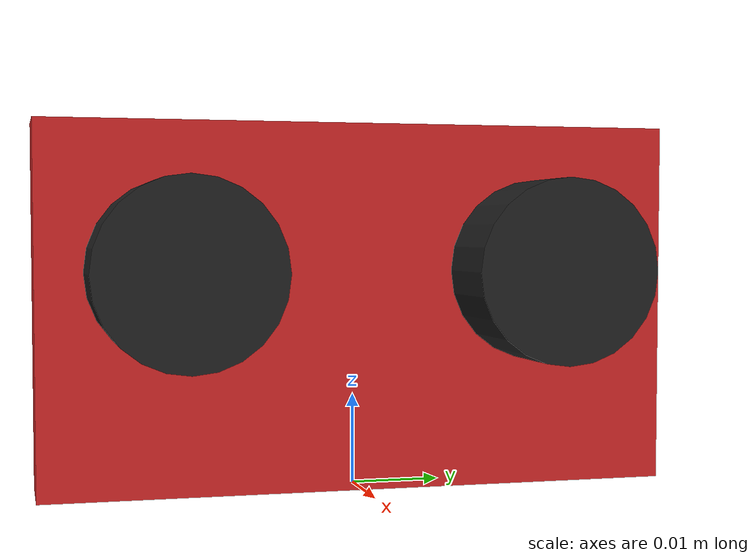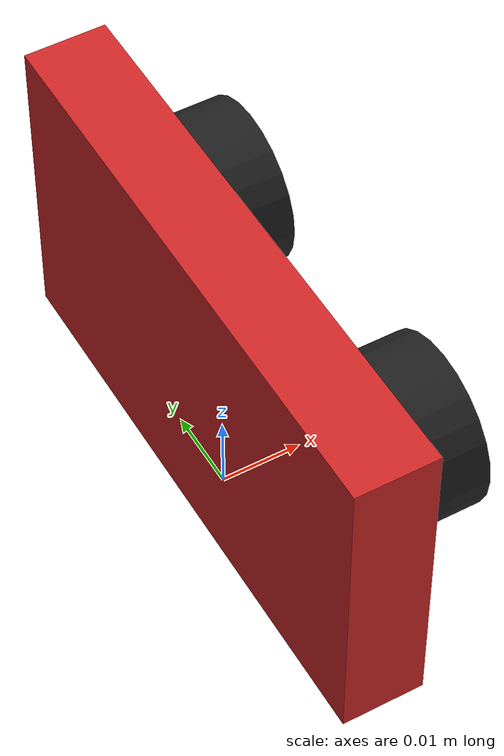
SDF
<?xml version="1.0" ?>
<sdf version="1.7">
  <model name="ultrasonic_sensor">
    <pose>0 0 0.02 0 0 0</pose>
    <link name="link">

      <inertial>
        <mass>0.1</mass>
      </inertial>

      <visual name="visual">
        <geometry>
          <box>
            <size>0.01 0.07 0.04</size>
          </box>
        </geometry>
        <material>
          <script>
            <uri>file://media/materials/scripts/gazebo.material</uri>
            <name>Gazebo/Red</name>
          </script>
        </material>
      </visual>

      <collision name="collision">
        <pose>0 0 -0.0145 0 0 0</pose>
        <geometry>
          <box>
            <size>0.01 0.07 0.04</size>
          </box>
        </geometry>
      </collision>

      <sensor name="sonar" type="sonar">
        <pose>0.01 0 0 0 1.5 3.14</pose>
        <sonar>
          <min>0</min>
          <max>3</max>
          <radius>0.3</radius>
        </sonar>
        <plugin name="sonar" filename="libSonarPlugin.so" />
        <always_on>1</always_on>
        <update_rate>30</update_rate>
        <visualize>true</visualize>
      </sensor>

    </link>

    <link name="left_sonar">
      <pose>0.01 0.02 0.004 0 1.57 0</pose>
      <collision name="collision">
        <geometry>
          <cylinder>
            <radius>.01</radius>
            <length>.01</length>
          </cylinder>
        </geometry>
      </collision>

      <visual name="visual">
        <geometry>
          <cylinder>
            <radius>.01</radius>
            <length>.01</length>
          </cylinder>
        </geometry>
        <material>
          <script>
            <uri>file://media/materials/scripts/gazebo.material</uri>
            <name>Gazebo/Black</name>
          </script>
        </material>
      </visual>
    </link>
    <joint name="left_sonar_joint" type="fixed">
        <child>left_sonar</child>
        <parent>link</parent>
      </joint>

    <link name="right_sonar">
      <pose>0.01 -0.02 0.004 0 1.57 0</pose>
      <collision name="collision">
        <geometry>
          <cylinder>
            <radius>.01</radius>
            <length>.01</length>
          </cylinder>
        </geometry>
      </collision>

      <visual name="visual">
        <geometry>
          <cylinder>
            <radius>.01</radius>
            <length>.01</length>
          </cylinder>
        </geometry>
        <material>
          <script>
            <uri>file://media/materials/scripts/gazebo.material</uri>
            <name>Gazebo/Black</name>
          </script>
        </material>
      </visual>
    </link>
    <joint name="right_sonar_joint" type="fixed">
        <child>right_sonar</child>
        <parent>link</parent>
      </joint>

  </model>
</sdf>
